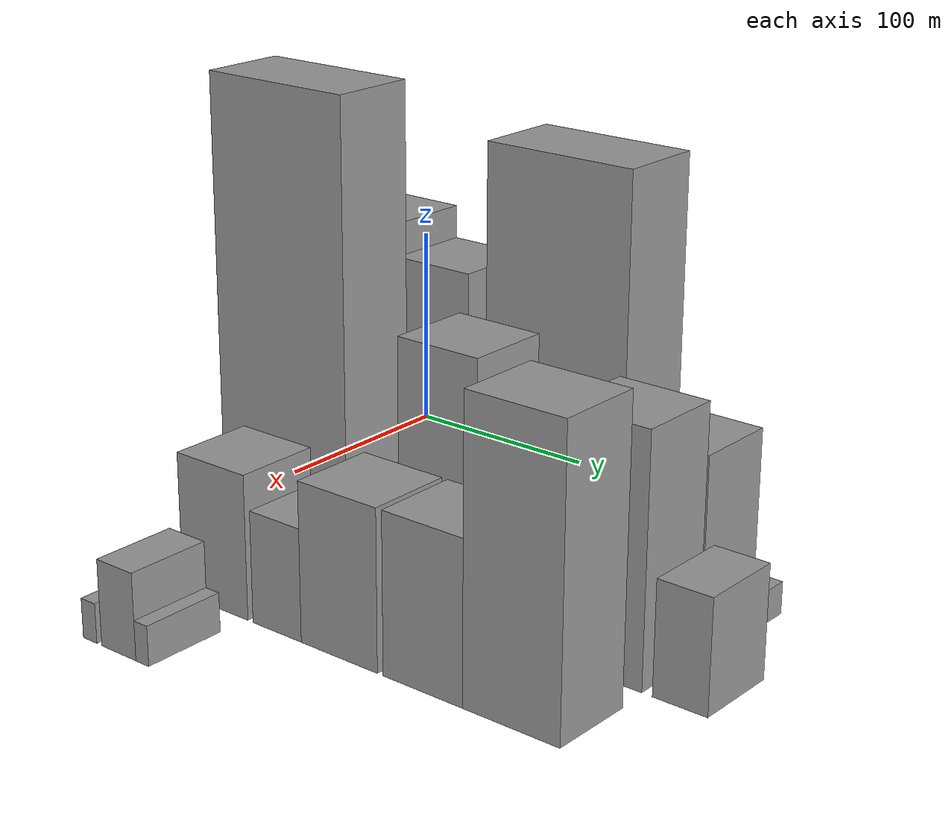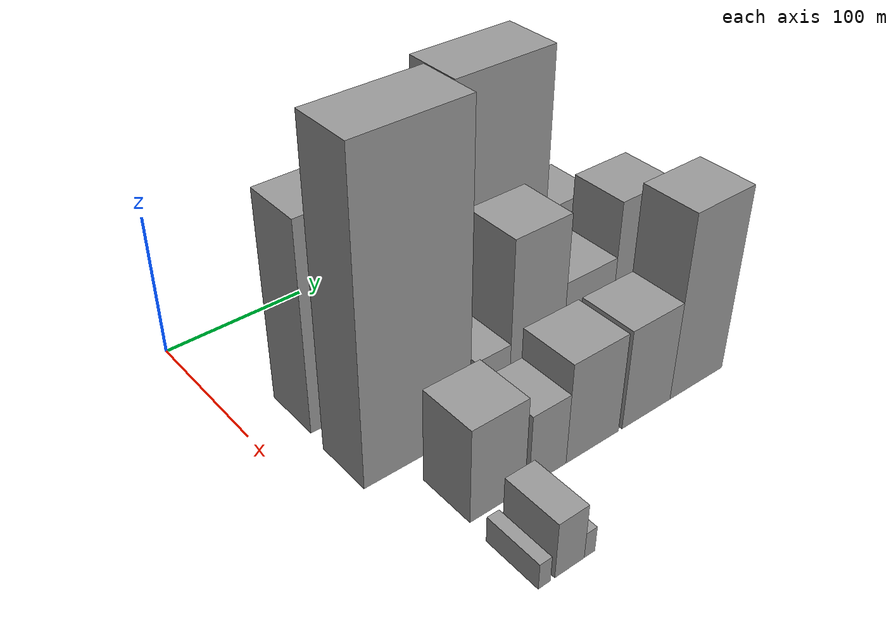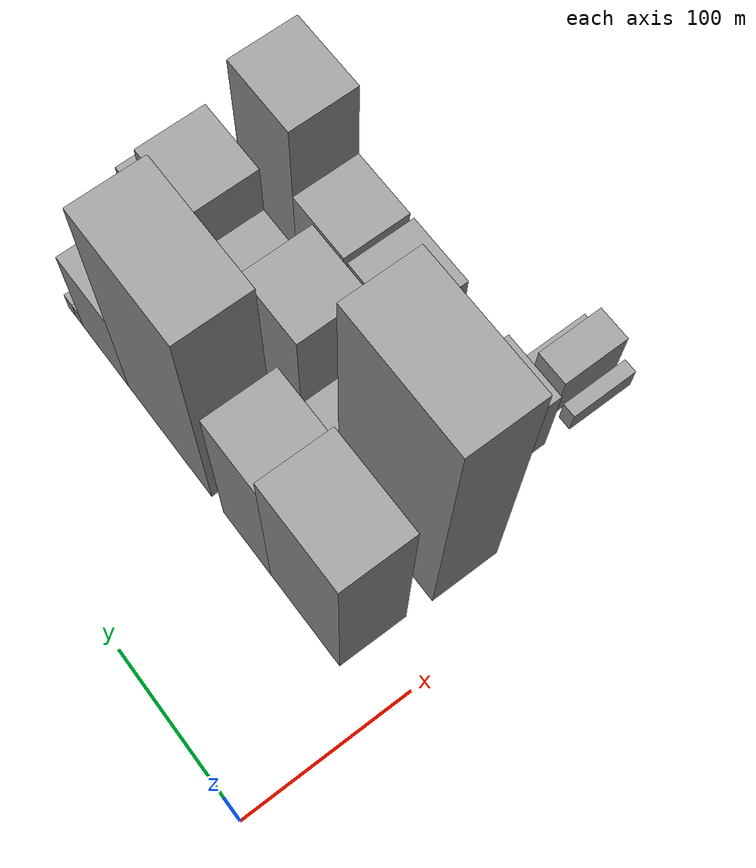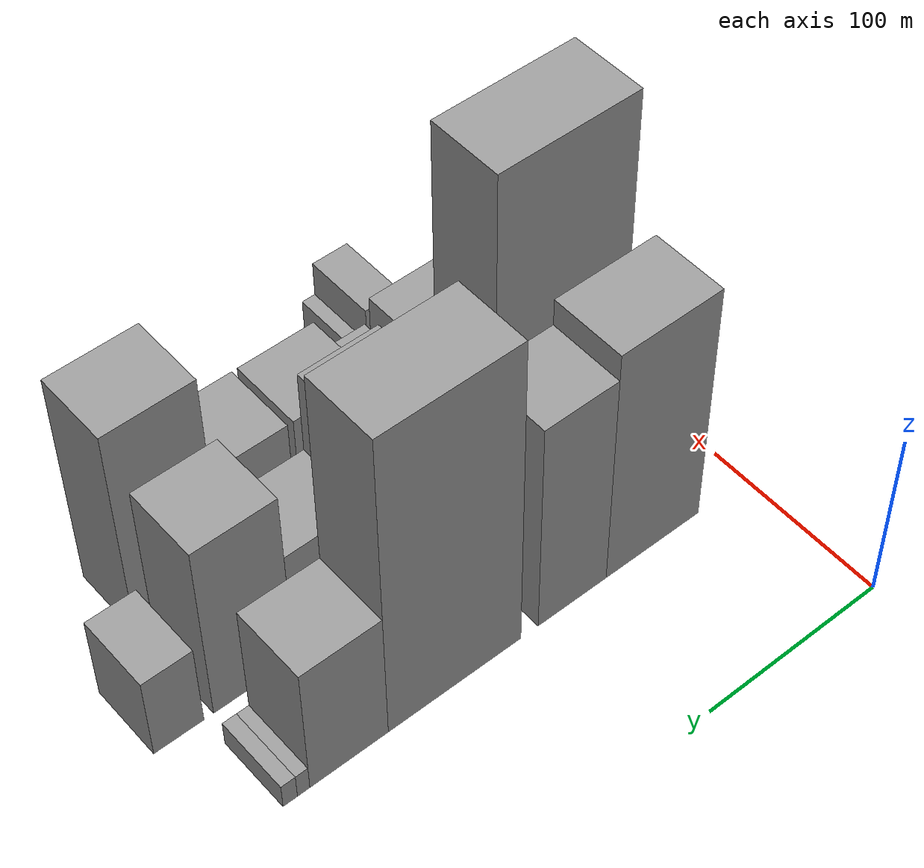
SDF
<sdf version="1.6">
 <world name="default">
  <model name="building_30">
   <static>1</static>
   <pose>100.0000 58.0798 0 0.000000 0.000000 0.000000</pose>
   <link name="link">
    <pose>0 0 73.50 0 0 0</pose>
    <collision name="collision"><geometry><box><size>40.0000 56.1190 147.0000</size></box></geometry></collision>
    <visual name="visual">
     <cast_shadows>0</cast_shadows>
     <geometry><box><size>40.0000 56.1190 147.0000</size></box></geometry>
     <material>
      <script>
       <uri>model://grey_wall/materials/scripts</uri>
       <uri>model://grey_wall/materials/textures</uri>
       <name>vrc/grey_wall</name>
      </script>
     </material>
    </visual>
   </link>
  </model>
  <model name="building_31">
   <static>1</static>
   <pose>100.0000 106.1186 0 0.000000 0.000000 0.000000</pose>
   <link name="link">
    <pose>0 0 66.00 0 0 0</pose>
    <collision name="collision"><geometry><box><size>40.0000 39.9587 132.0000</size></box></geometry></collision>
    <visual name="visual">
     <cast_shadows>0</cast_shadows>
     <geometry><box><size>40.0000 39.9587 132.0000</size></box></geometry>
     <material>
      <script>
       <uri>model://grey_wall/materials/scripts</uri>
       <uri>model://grey_wall/materials/textures</uri>
       <name>vrc/grey_wall</name>
      </script>
     </material>
    </visual>
   </link>
  </model>
  <model name="building_32">
   <static>1</static>
   <pose>100.0000 172.9153 0 0.000000 0.000000 0.000000</pose>
   <link name="link">
    <pose>0 0 96.00 0 0 0</pose>
    <collision name="collision"><geometry><box><size>40.0000 73.6347 192.0000</size></box></geometry></collision>
    <visual name="visual">
     <cast_shadows>0</cast_shadows>
     <geometry><box><size>40.0000 73.6347 192.0000</size></box></geometry>
     <material>
      <script>
       <uri>model://grey_wall/materials/scripts</uri>
       <uri>model://grey_wall/materials/textures</uri>
       <name>vrc/grey_wall</name>
      </script>
     </material>
    </visual>
   </link>
  </model>
  <model name="building_33">
   <static>1</static>
   <pose>100.0000 230.5214 0 0.000000 0.000000 0.000000</pose>
   <link name="link">
    <pose>0 0 40.50 0 0 0</pose>
    <collision name="collision"><geometry><box><size>40.0000 41.5774 81.0000</size></box></geometry></collision>
    <visual name="visual">
     <cast_shadows>0</cast_shadows>
     <geometry><box><size>40.0000 41.5774 81.0000</size></box></geometry>
     <material>
      <script>
       <uri>model://grey_wall/materials/scripts</uri>
       <uri>model://grey_wall/materials/textures</uri>
       <name>vrc/grey_wall</name>
      </script>
     </material>
    </visual>
   </link>
  </model>
  <model name="building_34">
   <static>1</static>
   <pose>100.0000 254.5305 0 0.000000 0.000000 0.000000</pose>
   <link name="link">
    <pose>0 0 7.50 0 0 0</pose>
    <collision name="collision"><geometry><box><size>40.0000 6.4407 15.0000</size></box></geometry></collision>
    <visual name="visual">
     <cast_shadows>0</cast_shadows>
     <geometry><box><size>40.0000 6.4407 15.0000</size></box></geometry>
     <material>
      <script>
       <uri>model://grey_wall/materials/scripts</uri>
       <uri>model://grey_wall/materials/textures</uri>
       <name>vrc/grey_wall</name>
      </script>
     </material>
    </visual>
   </link>
  </model>
  <model name="building_35">
   <static>1</static>
   <pose>100.0000 261.4549 0 0.000000 0.000000 0.000000</pose>
   <link name="link">
    <pose>0 0 7.50 0 0 0</pose>
    <collision name="collision"><geometry><box><size>40.0000 7.4081 15.0000</size></box></geometry></collision>
    <visual name="visual">
     <cast_shadows>0</cast_shadows>
     <geometry><box><size>40.0000 7.4081 15.0000</size></box></geometry>
     <material>
      <script>
       <uri>model://grey_wall/materials/scripts</uri>
       <uri>model://grey_wall/materials/textures</uri>
       <name>vrc/grey_wall</name>
      </script>
     </material>
    </visual>
   </link>
  </model>
  <model name="building_86">
   <static>1</static>
   <pose>155.0000 66.1215 0 0.000000 0.000000 0.000000</pose>
   <link name="link">
    <pose>0 0 108.00 0 0 0</pose>
    <collision name="collision"><geometry><box><size>40.0000 75.3001 216.0000</size></box></geometry></collision>
    <visual name="visual">
     <cast_shadows>0</cast_shadows>
     <geometry><box><size>40.0000 75.3001 216.0000</size></box></geometry>
     <material>
      <script>
       <uri>model://grey_wall/materials/scripts</uri>
       <uri>model://grey_wall/materials/textures</uri>
       <name>vrc/grey_wall</name>
      </script>
     </material>
    </visual>
   </link>
  </model>
  <model name="building_87">
   <static>1</static>
   <pose>155.0000 120.7336 0 0.000000 0.000000 0.000000</pose>
   <link name="link">
    <pose>0 0 24.00 0 0 0</pose>
    <collision name="collision"><geometry><box><size>40.0000 25.9242 48.0000</size></box></geometry></collision>
    <visual name="visual">
     <cast_shadows>0</cast_shadows>
     <geometry><box><size>40.0000 25.9242 48.0000</size></box></geometry>
     <material>
      <script>
       <uri>model://grey_wall/materials/scripts</uri>
       <uri>model://grey_wall/materials/textures</uri>
       <name>vrc/grey_wall</name>
      </script>
     </material>
    </visual>
   </link>
  </model>
  <model name="building_88">
   <static>1</static>
   <pose>155.0000 154.8827 0 0.000000 0.000000 0.000000</pose>
   <link name="link">
    <pose>0 0 60.00 0 0 0</pose>
    <collision name="collision"><geometry><box><size>40.0000 42.3740 120.0000</size></box></geometry></collision>
    <visual name="visual">
     <cast_shadows>0</cast_shadows>
     <geometry><box><size>40.0000 42.3740 120.0000</size></box></geometry>
     <material>
      <script>
       <uri>model://grey_wall/materials/scripts</uri>
       <uri>model://grey_wall/materials/textures</uri>
       <name>vrc/grey_wall</name>
      </script>
     </material>
    </visual>
   </link>
  </model>
  <model name="building_89">
   <static>1</static>
   <pose>155.0000 196.5788 0 0.000000 0.000000 0.000000</pose>
   <link name="link">
    <pose>0 0 36.00 0 0 0</pose>
    <collision name="collision"><geometry><box><size>40.0000 41.0181 72.0000</size></box></geometry></collision>
    <visual name="visual">
     <cast_shadows>0</cast_shadows>
     <geometry><box><size>40.0000 41.0181 72.0000</size></box></geometry>
     <material>
      <script>
       <uri>model://grey_wall/materials/scripts</uri>
       <uri>model://grey_wall/materials/textures</uri>
       <name>vrc/grey_wall</name>
      </script>
     </material>
    </visual>
   </link>
  </model>
  <model name="building_90">
   <static>1</static>
   <pose>155.0000 238.5612 0 0.000000 0.000000 0.000000</pose>
   <link name="link">
    <pose>0 0 55.50 0 0 0</pose>
    <collision name="collision"><geometry><box><size>40.0000 42.9466 111.0000</size></box></geometry></collision>
    <visual name="visual">
     <cast_shadows>0</cast_shadows>
     <geometry><box><size>40.0000 42.9466 111.0000</size></box></geometry>
     <material>
      <script>
       <uri>model://grey_wall/materials/scripts</uri>
       <uri>model://grey_wall/materials/textures</uri>
       <name>vrc/grey_wall</name>
      </script>
     </material>
    </visual>
   </link>
  </model>
  <model name="building_91">
   <static>1</static>
   <pose>155.0000 277.9467 0 0.000000 0.000000 0.000000</pose>
   <link name="link">
    <pose>0 0 25.50 0 0 0</pose>
    <collision name="collision"><geometry><box><size>40.0000 25.8244 51.0000</size></box></geometry></collision>
    <visual name="visual">
     <cast_shadows>0</cast_shadows>
     <geometry><box><size>40.0000 25.8244 51.0000</size></box></geometry>
     <material>
      <script>
       <uri>model://grey_wall/materials/scripts</uri>
       <uri>model://grey_wall/materials/textures</uri>
       <name>vrc/grey_wall</name>
      </script>
     </material>
    </visual>
   </link>
  </model>
  <model name="building_138">
   <static>1</static>
   <pose>210.0000 77.6585 0 0.000000 0.000000 0.000000</pose>
   <link name="link">
    <pose>0 0 33.00 0 0 0</pose>
    <collision name="collision"><geometry><box><size>40.0000 39.2911 66.0000</size></box></geometry></collision>
    <visual name="visual">
     <cast_shadows>0</cast_shadows>
     <geometry><box><size>40.0000 39.2911 66.0000</size></box></geometry>
     <material>
      <script>
       <uri>model://grey_wall/materials/scripts</uri>
       <uri>model://grey_wall/materials/textures</uri>
       <name>vrc/grey_wall</name>
      </script>
     </material>
    </visual>
   </link>
  </model>
  <model name="building_139">
   <static>1</static>
   <pose>210.0000 114.2788 0 0.000000 0.000000 0.000000</pose>
   <link name="link">
    <pose>0 0 25.50 0 0 0</pose>
    <collision name="collision"><geometry><box><size>40.0000 27.9495 51.0000</size></box></geometry></collision>
    <visual name="visual">
     <cast_shadows>0</cast_shadows>
     <geometry><box><size>40.0000 27.9495 51.0000</size></box></geometry>
     <material>
      <script>
       <uri>model://grey_wall/materials/scripts</uri>
       <uri>model://grey_wall/materials/textures</uri>
       <name>vrc/grey_wall</name>
      </script>
     </material>
    </visual>
   </link>
  </model>
  <model name="building_140">
   <static>1</static>
   <pose>210.0000 149.2164 0 0.000000 0.000000 0.000000</pose>
   <link name="link">
    <pose>0 0 36.00 0 0 0</pose>
    <collision name="collision"><geometry><box><size>40.0000 41.9258 72.0000</size></box></geometry></collision>
    <visual name="visual">
     <cast_shadows>0</cast_shadows>
     <geometry><box><size>40.0000 41.9258 72.0000</size></box></geometry>
     <material>
      <script>
       <uri>model://grey_wall/materials/scripts</uri>
       <uri>model://grey_wall/materials/textures</uri>
       <name>vrc/grey_wall</name>
      </script>
     </material>
    </visual>
   </link>
  </model>
  <model name="building_141">
   <static>1</static>
   <pose>210.0000 193.6788 0 0.000000 0.000000 0.000000</pose>
   <link name="link">
    <pose>0 0 36.00 0 0 0</pose>
    <collision name="collision"><geometry><box><size>40.0000 40.9989 72.0000</size></box></geometry></collision>
    <visual name="visual">
     <cast_shadows>0</cast_shadows>
     <geometry><box><size>40.0000 40.9989 72.0000</size></box></geometry>
     <material>
      <script>
       <uri>model://grey_wall/materials/scripts</uri>
       <uri>model://grey_wall/materials/textures</uri>
       <name>vrc/grey_wall</name>
      </script>
     </material>
    </visual>
   </link>
  </model>
  <model name="building_142">
   <static>1</static>
   <pose>210.0000 237.8310 0 0.000000 0.000000 0.000000</pose>
   <link name="link">
    <pose>0 0 66.00 0 0 0</pose>
    <collision name="collision"><geometry><box><size>40.0000 47.3056 132.0000</size></box></geometry></collision>
    <visual name="visual">
     <cast_shadows>0</cast_shadows>
     <geometry><box><size>40.0000 47.3056 132.0000</size></box></geometry>
     <material>
      <script>
       <uri>model://grey_wall/materials/scripts</uri>
       <uri>model://grey_wall/materials/textures</uri>
       <name>vrc/grey_wall</name>
      </script>
     </material>
    </visual>
   </link>
  </model>
  <model name="building_190">
   <static>1</static>
   <pose>265.0000 60.6713 0 0.000000 0.000000 0.000000</pose>
   <link name="link">
    <pose>0 0 9.00 0 0 0</pose>
    <collision name="collision"><geometry><box><size>40.0000 8.3212 18.0000</size></box></geometry></collision>
    <visual name="visual">
     <cast_shadows>0</cast_shadows>
     <geometry><box><size>40.0000 8.3212 18.0000</size></box></geometry>
     <material>
      <script>
       <uri>model://grey_wall/materials/scripts</uri>
       <uri>model://grey_wall/materials/textures</uri>
       <name>vrc/grey_wall</name>
      </script>
     </material>
    </visual>
   </link>
  </model>
  <model name="building_191">
   <static>1</static>
   <pose>265.0000 78.1643 0 0.000000 0.000000 0.000000</pose>
   <link name="link">
    <pose>0 0 19.50 0 0 0</pose>
    <collision name="collision"><geometry><box><size>40.0000 20.6649 39.0000</size></box></geometry></collision>
    <visual name="visual">
     <cast_shadows>0</cast_shadows>
     <geometry><box><size>40.0000 20.6649 39.0000</size></box></geometry>
     <material>
      <script>
       <uri>model://grey_wall/materials/scripts</uri>
       <uri>model://grey_wall/materials/textures</uri>
       <name>vrc/grey_wall</name>
      </script>
     </material>
    </visual>
   </link>
  </model>
  <model name="building_192">
   <static>1</static>
   <pose>265.0000 92.3054 0 0.000000 0.000000 0.000000</pose>
   <link name="link">
    <pose>0 0 9.00 0 0 0</pose>
    <collision name="collision"><geometry><box><size>40.0000 7.6173 18.0000</size></box></geometry></collision>
    <visual name="visual">
     <cast_shadows>0</cast_shadows>
     <geometry><box><size>40.0000 7.6173 18.0000</size></box></geometry>
     <material>
      <script>
       <uri>model://grey_wall/materials/scripts</uri>
       <uri>model://grey_wall/materials/textures</uri>
       <name>vrc/grey_wall</name>
      </script>
     </material>
    </visual>
   </link>
  </model>
 </world>
</sdf>
